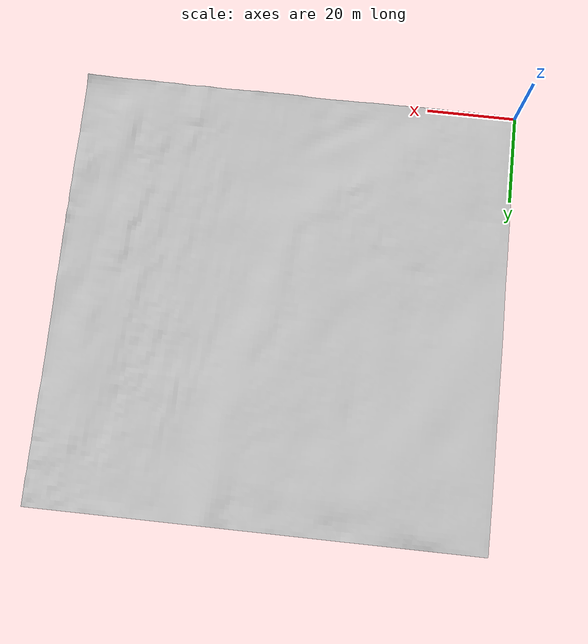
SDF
<?xml version="1.0" ?>
<sdf version="1.4">
    <model name="terrain">
        <static>true</static>
        <link name="terrain1">
            <pose>0 0 0 0 0 0</pose>
            <collision name="terrain1_collision">
                <geometry>
                    <mesh>
                        <uri>model://nisuy100x100x3/meshes/terrain1.dae</uri>
                    </mesh>
                </geometry>
            </collision>
            <visual name="terrain1_visual">
                <geometry>
                    <mesh>
                        <uri>model://nisuy100x100x3/meshes/terrain1.dae</uri>
                    </mesh>
                </geometry>
                <material>
                    <script>
                        <uri>model://nisuy100x100x3/materials/scripts</uri>
                        <uri>model://nisuy100x100x3/materials/textures</uri>
                        <name>terrain/terrain1</name>
                    </script>
                </material>
            </visual>
        </link>
    </model>
</sdf>
